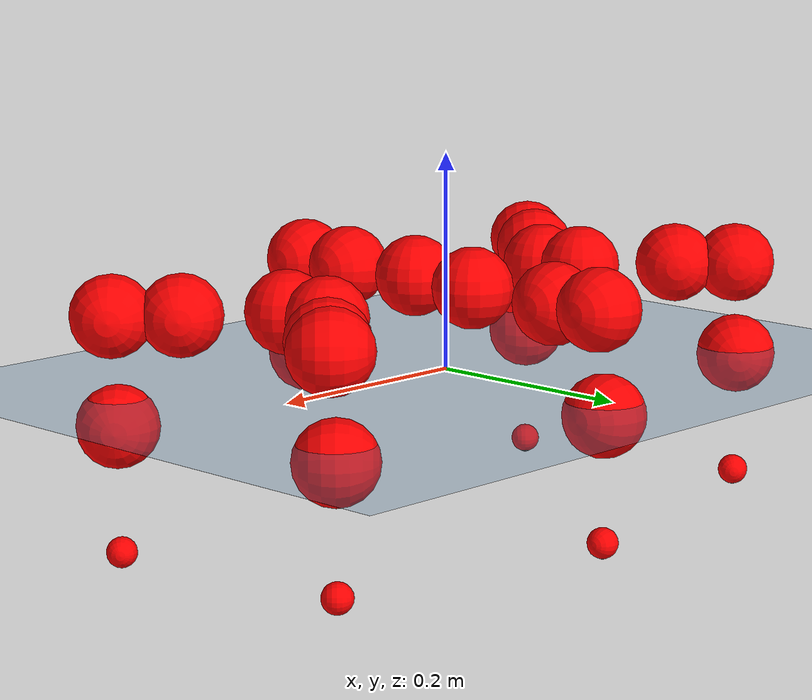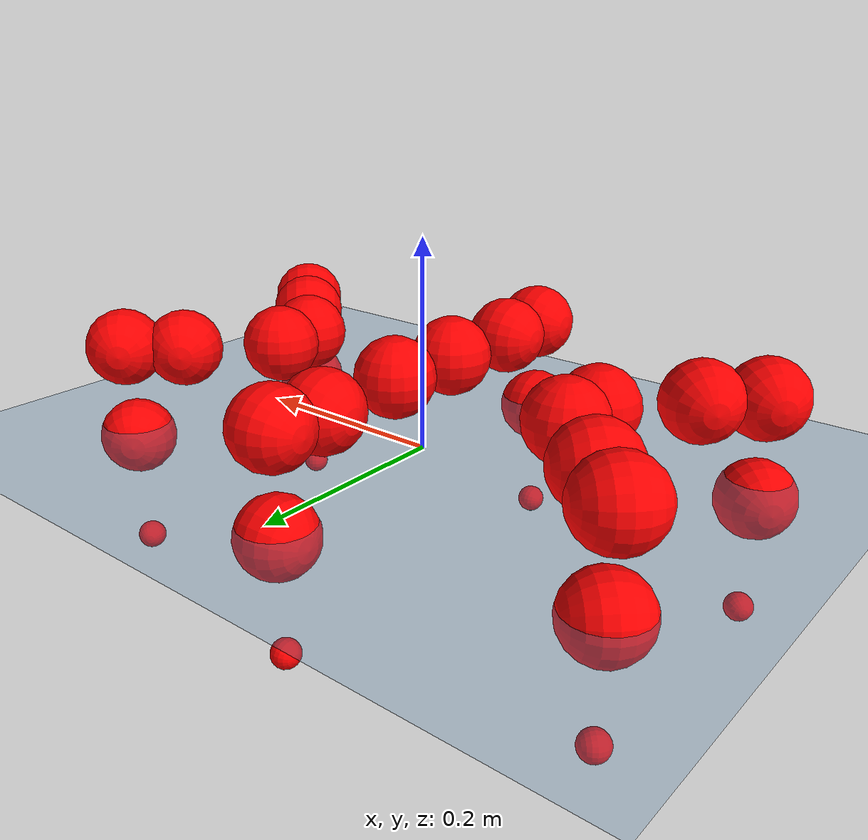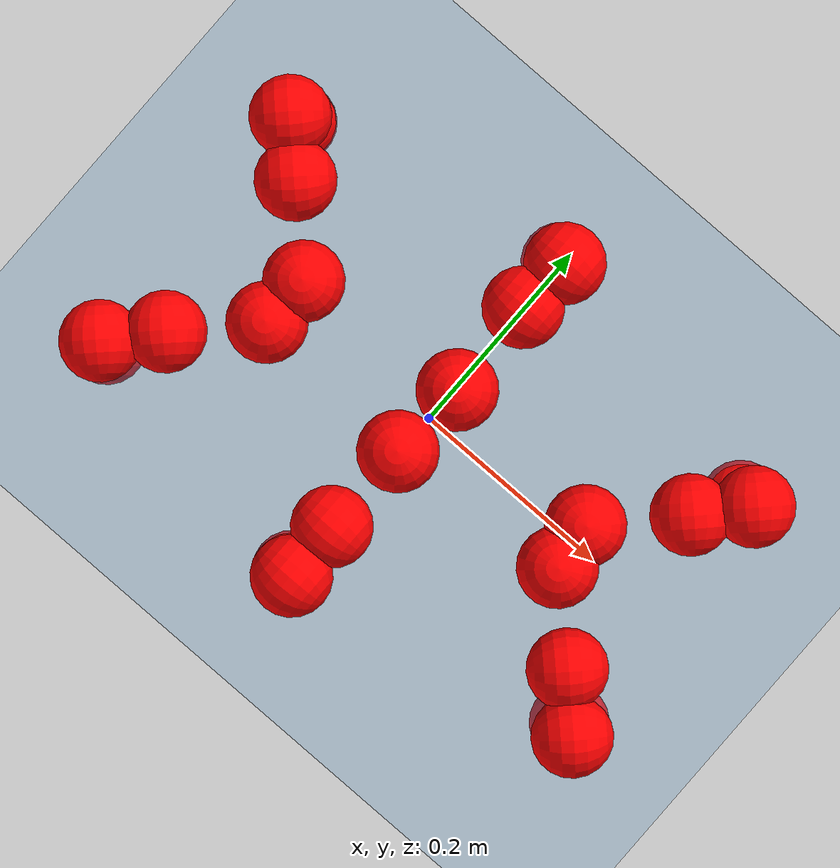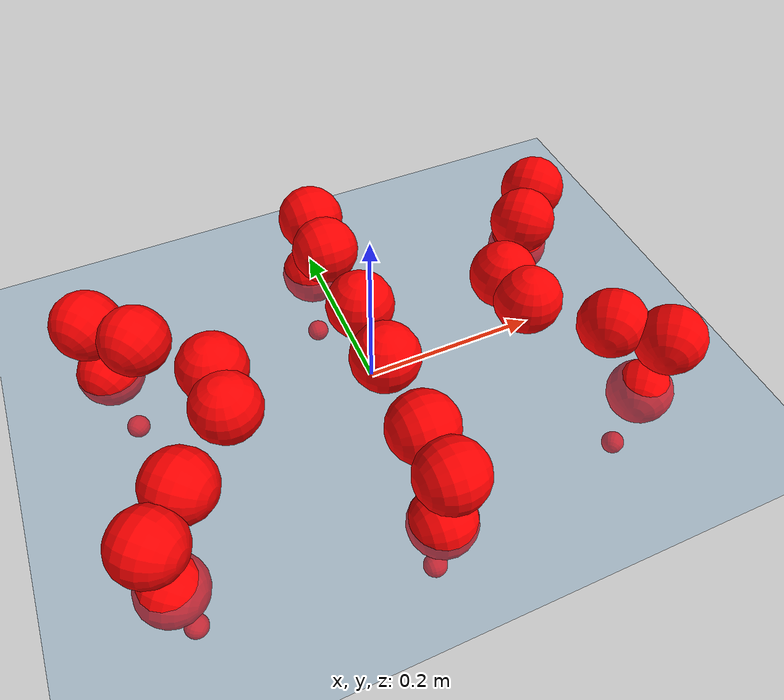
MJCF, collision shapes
<mujoco model="Golem">
  <compiler angle="radian" assetdir="assets" balanceinertia="true" inertiafromgeom="false"/>

  <option timestep="0.005" density="1.2" viscosity="2e-05"/>

  <size nkey="1"/>

  <visual>
    <quality shadowsize="8192"/>
    <map shadowclip="0.5"/>
  </visual>

  <default>
    <default class="/">
      <joint armature="0.01" damping="0.01" frictionloss="0.01"/>
      <geom contype="0" conaffinity="0" group="1" solref="-1000 -80"/>
      <site size="0.01 0.005 0.005" group="5"/>
      <general forcelimited="true" biastype="affine" gainprm="25" biasprm="0 -25 -0.5"/>
      <default class="visual">
        <geom type="mesh" group="2"/>
      </default>
      <default class="collision">
        <geom group="3"/>
      </default>
      <default class="foot">
        <geom size="0.01 0 0" condim="6" group="4" priority="1" solimp="0.015 1 0.01"/>
      </default>
      <default class="reward_collision_sphere">
        <geom group="5" rgba="1 0 0 1"/>
      </default>
    </default>
  </default>

  <asset>
    <texture type="skybox" colorspace="auto" name="//unnamed_texture_0" builtin="gradient" rgb1="0.95 0.95 0.95" rgb2="0.95 0.95 0.95" width="100" height="600"/>
    <texture type="2d" colorspace="auto" name="texplane" builtin="checker" rgb1="0.345 0.575 0.748" rgb2="0.345 0.575 0.748" markrgb="1 1 1" width="512" height="512"/>
    <material name="MatPlane" class="/" texture="texplane" texuniform="true" texrepeat="2 2" specular="0.9"/>
    <mesh name="body" class="/" file="body.stl" scale="0.001 0.001 0.001"/>
    <mesh name="coxa" class="/" file="coxa.stl" scale="0.001 0.001 0.001"/>
    <mesh name="femur" class="/" file="femur.stl" scale="0.001 0.001 0.001"/>
    <mesh name="tibia" class="/" file="tibia.stl" scale="0.001 0.001 0.001"/>
    <mesh name="tarsus" class="/" file="tarsus.stl" scale="0.001 0.001 0.001"/>
  </asset>

  <worldbody>
    <geom name="floor" class="/" size="100 100 0.125" type="plane" group="0" material="MatPlane"/>
    <light name="toplight_shadow" class="/" pos="0 0 5" dir="0.0990148 0.0990148 -0.990148" type="directional" ambient="0.04 0.04 0.04" diffuse="0.55 0.55 0.55" specular="0.12 0.12 0.12"/>
    <light name="toplight_fill" class="/" pos="0 0 5" dir="0.0990148 0.0990148 -0.990148" type="directional" castshadow="false" ambient="0.04 0.04 0.04" diffuse="0.3 0.3 0.3" specular="0.08 0.08 0.08"/>
    <body name="trunk" pos="0.00165543 -0.00349041 -1.63869e-05" quat="1 -7.57849e-05 -0.000117834 -8.89678e-06">
      <inertial pos="-0.000856942 -0.00110586 0.00436704" quat="0.999959 0.00349722 -0.00691672 -0.00457664" mass="2.89219" diaginertia="0.0138704 0.00042935 0.0264348"/>
      <joint name="//unnamed_joint_0" type="free"/>
      <geom name="//unnamed_geom_1" class="/" pos="0 0 0.0773141" quat="1 0 0 0" type="mesh" rgba="0.9 0.9 0.9 1" mesh="body"/>
      <site name="imu" class="/" pos="0.128663 0.00255431 0.110115" size="0.00939171"/>
      <camera name="track" class="/" pos="0 -1.07055 0" quat="0.707107 0.707107 0 0" mode="trackcom"/>
      <camera name="ego_camera" class="/" pos="0.139647 0 0.120803" quat="-0.5 -0.5 0.5 0.5"/>
      <body name="coxa_RR" pos="-0.190934 -0.0494046 0.0742937" quat="0.382508 -0.00113976 0.000938604 -0.923951">
        <inertial pos="0.000452851 0.00476458 -0.00417873" quat="0.999995 0.000690858 0.000545416 0.00296255" mass="0.161069" diaginertia="0.0143213 0.000429383 0.0256303"/>
        <joint name="coxa_joint_RR" class="/" pos="0 0 0" axis="-0.00649853 0.00186283 -0.999977" range="-3.17078 3.131" armature="0.00913138" damping="0.0241924" frictionloss="0.00825715"/>
        <geom name="//unnamed_geom_2" class="/" type="mesh" rgba="0.2 0.2 0.2 1" mesh="coxa"/>
        <geom name="//unnamed_geom_3" class="reward_collision_sphere" size="0.0375668" pos="-0.0322262 0 0"/>
        <body name="femur_RR" pos="0.0589805 0.00216514 0.00111775" quat="0.500815 -0.499029 0.500823 0.49933">
          <inertial pos="0.00159373 0.000584589 -0.0021412" quat="0.999999 0.000816648 -0.00114777 0.000877811" mass="0.162714" diaginertia="0.0140205 0.000426978 0.0250864"/>
          <joint name="femur_joint_RR" class="/" pos="0 0 0" axis="0.00270465 0.00680679 -0.999973" range="-3.12711 3.14255" armature="0.00994036" damping="0.0174514" frictionloss="0.00934245"/>
          <geom name="//unnamed_geom_4" class="/" type="mesh" rgba="0.9 0.9 0.9 1" mesh="femur"/>
          <geom name="//unnamed_geom_5" class="reward_collision_sphere" size="0.0375668"/>
          <body name="tibia_RR" pos="0.00144053 -0.059673 0.00420589" quat="-6.33251e-06 1 -4.59013e-05 1.78678e-05">
            <inertial pos="0.000543797 0.000684001 0.00222887" quat="0.999998 0.000453481 0.000504716 -0.00170921" mass="0.170434" diaginertia="0.0143519 0.000432279 0.0242375"/>
            <joint name="tibia_joint_RR" class="/" pos="0 0 0" axis="-0.000805214 0.00531719 0.999986" range="-3.15833 3.25579" armature="0.00808727" damping="0.00549223" frictionloss="0.0105439"/>
            <geom name="//unnamed_geom_6" class="/" type="mesh" rgba="0.2 0.2 0.2 1" mesh="tibia"/>
            <geom name="//unnamed_geom_7" class="reward_collision_sphere" size="0.0375668"/>
            <body name="tarsus_RR" pos="0.0972401 0.00329398 -0.000806837" quat="1 0.000886191 0.000198825 0.000341117">
              <inertial pos="0.0633504 -0.00565648 0.00245013" quat="0.498186 0.503751 0.499871 0.498171" mass="0.152884" diaginertia="0.0136251 0.000406253 0.0243593"/>
              <joint name="tarsus_joint_RR" class="/" pos="0 0 0" axis="-0.00203362 0.00479982 0.999986" range="-3.2295 3.12567" armature="0.0102371" damping="0.0469983" frictionloss="0.00968778"/>
              <geom name="//unnamed_geom_8" class="/" type="mesh" rgba="0.9 0.9 0.9 1" mesh="tarsus"/>
              <geom name="foot_1" class="foot" size="0.00974037" pos="0.120311 0 0" quat="0 -0.707107 0 0.707107"/>
              <geom name="//unnamed_geom_10" class="reward_collision_sphere" size="0.0375668"/>
              <geom name="//unnamed_geom_11" class="reward_collision_sphere" size="0.0140876" pos="0.115477 0 0"/>
              <site name="foot_1" class="foot" pos="0.120311 0 0" quat="0 -0.707107 0 0.707107" size="0.00939171"/>
            </body>
          </body>
        </body>
      </body>
      <body name="coxa_RM" pos="-0.00313617 -0.0693836 0.0819148" quat="0.707234 -0.00041819 -0.000405133 -0.70698">
        <inertial pos="-0.00153595 0.00108501 0.00250632" quat="0.999993 -0.00126833 0.00286092 -0.00197816" mass="0.171829" diaginertia="0.0147071 0.00044705 0.0265865"/>
        <joint name="coxa_joint_RM" class="/" pos="0 0 0" axis="-0.00164779 -0.00483153 -0.999987" stiffness="0.0210577" range="-3.18705 3.09172" armature="0.00952493" damping="0.0362587" frictionloss="0.0119329"/>
        <geom name="//unnamed_geom_12" class="/" type="mesh" rgba="0.2 0.2 0.2 1" mesh="coxa"/>
        <geom name="//unnamed_geom_13" class="reward_collision_sphere" size="0.0375668" pos="-0.0322262 0 0"/>
        <body name="femur_RM" pos="0.057621 -0.000660735 -0.00176553" quat="0.499834 -0.500829 0.499139 0.500196">
          <inertial pos="0.000761596 -0.000606353 -0.00167895" quat="0.999925 0.00126271 -0.0121845 4.22905e-06" mass="0.157727" diaginertia="0.0145522 0.000417086 0.0252911"/>
          <joint name="femur_joint_RM" class="/" pos="0 0 0" axis="-0.00904507 -0.00964703 -0.999913" stiffness="0.000819022" range="-3.0914 3.12654" armature="0.00829147" damping="0.0157556" frictionloss="0.00895853"/>
          <geom name="//unnamed_geom_14" class="/" type="mesh" rgba="0.9 0.9 0.9 1" mesh="femur"/>
          <geom name="//unnamed_geom_15" class="reward_collision_sphere" size="0.0375668"/>
          <body name="tibia_RM" pos="-0.000734838 -0.056903 0.0014441" quat="0.000116512 1 0.000318858 4.11407e-06">
            <inertial pos="0.00473861 0.00345958 0.00209813" quat="0.999701 -0.0157063 0.0166221 0.00861592" mass="0.167025" diaginertia="0.0142969 0.000444794 0.0274772"/>
            <joint name="tibia_joint_RM" class="/" pos="0 0 0" axis="-0.00274318 -0.00478878 0.999985" range="-3.11456 3.15781" armature="0.00972249" damping="0" frictionloss="0.0094467"/>
            <geom name="//unnamed_geom_16" class="/" type="mesh" rgba="0.2 0.2 0.2 1" mesh="tibia"/>
            <geom name="//unnamed_geom_17" class="reward_collision_sphere" size="0.0375668"/>
            <body name="tarsus_RM" pos="0.093473 0.00153037 0.00271416" quat="0.999999 3.75071e-06 0.00113888 0.000246151">
              <inertial pos="0.0632604 0.00334448 -0.0020414" quat="0.494179 0.499904 0.497739 0.508074" mass="0.164924" diaginertia="0.0144712 0.00042251 0.0257425"/>
              <joint name="tarsus_joint_RM" class="/" pos="0 0 0" axis="0.0103251 0.00108234 0.999946" range="-3.13726 3.1242" armature="0.0112333" damping="0" frictionloss="0.010422"/>
              <geom name="//unnamed_geom_18" class="/" type="mesh" rgba="0.9 0.9 0.9 1" mesh="tarsus"/>
              <geom name="foot_2" class="foot" size="0.0100702" pos="0.120311 0 0" quat="0 -0.707107 0 0.707107"/>
              <geom name="//unnamed_geom_20" class="reward_collision_sphere" size="0.0375668"/>
              <geom name="//unnamed_geom_21" class="reward_collision_sphere" size="0.0140876" pos="0.115477 0 0"/>
              <site name="foot_2" class="foot" pos="0.120311 0 0" quat="0 -0.707107 0 0.707107" size="0.00939171"/>
            </body>
          </body>
        </body>
      </body>
      <body name="coxa_RF" pos="0.196135 -0.0446037 0.074605" quat="0.923852 -9.08275e-05 5.50839e-05 -0.38275">
        <inertial pos="-0.00264857 -0.000449356 0.000638922" quat="0.999932 -0.00766889 0.00883663 5.40359e-05" mass="0.164267" diaginertia="0.0133862 0.000448469 0.0264832"/>
        <joint name="coxa_joint_RF" class="/" pos="0 0 0" axis="0.00576346 0.00174513 -0.999982" range="-3.13492 3.09268" armature="0.00894883" damping="0.0306941" frictionloss="0.00848155"/>
        <geom name="//unnamed_geom_22" class="/" type="mesh" rgba="0.2 0.2 0.2 1" mesh="coxa"/>
        <geom name="//unnamed_geom_23" class="reward_collision_sphere" size="0.0375668" pos="-0.0322262 0 0"/>
        <body name="femur_RF" pos="0.0598537 0.00238427 -0.0023555" quat="0.500083 -0.499996 0.500901 0.499018">
          <inertial pos="-0.00216915 -0.00297131 0.00190404" quat="0.999935 0.00157284 -0.000606266 0.0112856" mass="0.162881" diaginertia="0.0136669 0.000397872 0.0257688"/>
          <joint name="femur_joint_RF" class="/" pos="0 0 0" axis="-8.35067e-06 -0.000555988 -1" stiffness="0.00106516" range="-3.19704 3.14979" armature="0.00891639" damping="0.0143775" frictionloss="0.0102414"/>
          <geom name="//unnamed_geom_24" class="/" type="mesh" rgba="0.9 0.9 0.9 1" mesh="femur"/>
          <geom name="//unnamed_geom_25" class="reward_collision_sphere" size="0.0375668"/>
          <body name="tibia_RF" pos="0.000529023 -0.0610219 0.000195227" quat="-5.65939e-05 1 6.8792e-06 -0.00012357">
            <inertial pos="0.00171877 -0.00039495 0.000809591" quat="0.999936 -0.00264841 0.0102735 -0.00392266" mass="0.162555" diaginertia="0.0131989 0.000434999 0.0248902"/>
            <joint name="tibia_joint_RF" class="/" pos="0 0 0" axis="-0.00453802 -0.00551132 0.999975" range="-3.09693 3.08726" armature="0.00996522" damping="0.00104454" frictionloss="0.01038"/>
            <geom name="//unnamed_geom_26" class="/" type="mesh" rgba="0.2 0.2 0.2 1" mesh="tibia"/>
            <geom name="//unnamed_geom_27" class="reward_collision_sphere" size="0.0375668"/>
            <body name="tarsus_RF" pos="0.0984425 -0.00363121 -0.00209685" quat="0.999998 0.000257435 -0.0011679 -0.00172439">
              <inertial pos="0.0687808 0.0045159 -0.00238488" quat="0.495161 0.516415 0.507495 0.480187" mass="0.166767" diaginertia="0.013383 0.00045962 0.025071"/>
              <joint name="tarsus_joint_RF" class="/" pos="0 0 0" axis="0.00203493 -0.00959936 0.999952" stiffness="0.0237108" range="-3.2241 3.09604" armature="0.00671862" damping="0.0106025" frictionloss="0.00936268"/>
              <geom name="//unnamed_geom_28" class="/" type="mesh" rgba="0.9 0.9 0.9 1" mesh="tarsus"/>
              <geom name="foot_3" class="foot" size="0.00855973" pos="0.120311 0 0" quat="0 -0.707107 0 0.707107"/>
              <geom name="//unnamed_geom_30" class="reward_collision_sphere" size="0.0375668"/>
              <geom name="//unnamed_geom_31" class="reward_collision_sphere" size="0.0140876" pos="0.115477 0 0"/>
              <site name="foot_3" class="foot" pos="0.120311 0 0" quat="0 -0.707107 0 0.707107" size="0.00939171"/>
            </body>
          </body>
        </body>
      </body>
      <body name="coxa_LR" pos="-0.189913 0.0454366 0.0778186" quat="0.382446 -7.64358e-07 -0.000569972 0.923977">
        <inertial pos="-0.00215139 0.00482234 0.00331625" quat="0.999949 0.00351142 0.00936499 0.00122454" mass="0.173847" diaginertia="0.0156041 0.000441402 0.0274221"/>
        <joint name="coxa_joint_LR" class="/" pos="0 0 0" axis="-0.00462063 -0.00167751 -0.999988" stiffness="0.00451243" range="-3.1602 3.05151" armature="0.0111314" damping="0.0101288" frictionloss="0.00824371"/>
        <geom name="//unnamed_geom_32" class="/" type="mesh" rgba="0.2 0.2 0.2 1" mesh="coxa"/>
        <geom name="//unnamed_geom_33" class="reward_collision_sphere" size="0.0375668" pos="-0.0322262 0 0"/>
        <body name="femur_LR" pos="0.0586944 0.000679218 0.00252458" quat="0.500229 -0.500102 0.500114 0.499554">
          <inertial pos="0.00220486 -0.00099193 0.00265964" quat="0.999771 -0.0150434 -0.0145626 -0.00435866" mass="0.160491" diaginertia="0.014116 0.000424903 0.0231797"/>
          <joint name="femur_joint_LR" class="/" pos="0 0 0" axis="0.000598742 0.004199 0.999991" stiffness="0.0114365" range="-3.2461 3.17937" armature="0.00943573" damping="0.019101" frictionloss="0.0083508"/>
          <geom name="//unnamed_geom_34" class="/" type="mesh" rgba="0.9 0.9 0.9 1" mesh="femur"/>
          <geom name="//unnamed_geom_35" class="reward_collision_sphere" size="0.0375668"/>
          <body name="tibia_LR" pos="0.000319464 -0.0578229 0.000712148" quat="0.000210188 1 0.000202701 4.50121e-05">
            <inertial pos="-0.00205745 0.00458961 -0.00099951" quat="1 -9.22275e-05 2.94189e-05 -0.00010589" mass="0.165896" diaginertia="0.0142676 0.000448318 0.0256301"/>
            <joint name="tibia_joint_LR" class="/" pos="0 0 0" axis="-0.00441947 -0.00076526 -0.99999" range="-3.09809 3.14321" armature="0.00934069" damping="0.0444674" frictionloss="0.00928228"/>
            <geom name="//unnamed_geom_36" class="/" type="mesh" rgba="0.2 0.2 0.2 1" mesh="tibia"/>
            <geom name="//unnamed_geom_37" class="reward_collision_sphere" size="0.0375668"/>
            <body name="tarsus_LR" pos="0.0882606 0.00229945 0.00229571" quat="0.999999 0.00114405 -3.14946e-05 -0.00083369">
              <inertial pos="0.0602535 -0.00108137 7.79457e-06" quat="0.501231 0.500173 0.500592 0.497999" mass="0.161537" diaginertia="0.0148514 0.000438579 0.0266961"/>
              <joint name="tarsus_joint_LR" class="/" pos="0 0 0" axis="-0.00935595 -0.00945155 -0.999912" stiffness="0.0165323" range="-3.07866 3.13545" armature="0.00933407" damping="0.0287418" frictionloss="0.0109919"/>
              <geom name="//unnamed_geom_38" class="/" type="mesh" rgba="0.9 0.9 0.9 1" mesh="tarsus"/>
              <geom name="foot_4" class="foot" size="0.00945375" pos="0.120311 0 0" quat="0.707107 0 -0.707107 0"/>
              <geom name="//unnamed_geom_40" class="reward_collision_sphere" size="0.0375668"/>
              <geom name="//unnamed_geom_41" class="reward_collision_sphere" size="0.0140876" pos="0.115477 0 0"/>
              <site name="foot_4" class="foot" pos="0.120311 0 0" quat="0.707107 0 -0.707107 0" size="0.00939171"/>
            </body>
          </body>
        </body>
      </body>
      <body name="coxa_LM" pos="0.000958453 0.0714991 0.080527" quat="0.707058 -3.14807e-05 0.000164458 0.707156">
        <inertial pos="0.00293588 -0.0023078 0.00169234" quat="0.999991 0.00131886 0.00203181 0.00343877" mass="0.174495" diaginertia="0.0151438 0.000475779 0.0251589"/>
        <joint name="coxa_joint_LM" class="/" pos="0 0 0" axis="0.00536385 -0.00820727 -0.999952" range="-3.13847 3.14916" armature="0.00751462" damping="0.0301422" frictionloss="0.00961011"/>
        <geom name="//unnamed_geom_42" class="/" type="mesh" rgba="0.2 0.2 0.2 1" mesh="coxa"/>
        <geom name="//unnamed_geom_43" class="reward_collision_sphere" size="0.0375668" pos="-0.0322262 0 0"/>
        <body name="femur_LM" pos="0.0626016 0.00387891 -0.00221791" quat="0.499441 -0.500456 0.499427 0.500675">
          <inertial pos="-0.00179788 0.000619858 -0.00351369" quat="1 -3.53483e-05 -2.56963e-05 -1.19585e-05" mass="0.165602" diaginertia="0.0145231 0.000444521 0.0252427"/>
          <joint name="femur_joint_LM" class="/" pos="0 0 0" axis="0.00953765 0.00136117 0.999954" range="-3.09224 3.1742" armature="0.0100072" damping="0.0143283" frictionloss="0.00904968"/>
          <geom name="//unnamed_geom_44" class="/" type="mesh" rgba="0.9 0.9 0.9 1" mesh="femur"/>
          <geom name="//unnamed_geom_45" class="reward_collision_sphere" size="0.0375668"/>
          <body name="tibia_LM" pos="-0.00209621 -0.0540363 -0.00267661" quat="0.000310117 1 -0.000773867 -0.000180182">
            <inertial pos="8.95603e-05 0.00416756 -0.00532081" quat="0.999625 -0.0223505 -0.014659 -0.00587583" mass="0.172515" diaginertia="0.0140067 0.000452811 0.0263315"/>
            <joint name="tibia_joint_LM" class="/" pos="0 0 0" axis="0.00633542 0.00529073 -0.999966" stiffness="0.0234545" range="-3.14584 3.20783" armature="0.01031" damping="0.0165848" frictionloss="0.00978177"/>
            <geom name="//unnamed_geom_46" class="/" type="mesh" rgba="0.2 0.2 0.2 1" mesh="tibia"/>
            <geom name="//unnamed_geom_47" class="reward_collision_sphere" size="0.0375668"/>
            <body name="tarsus_LM" pos="0.0944654 0.00455581 -0.0033766" quat="1 0.000549057 0.000651973 0.000363003">
              <inertial pos="0.0631085 -0.0010288 0.00259634" quat="0.492376 0.505572 0.48621 0.515328" mass="0.158009" diaginertia="0.0136306 0.000444035 0.025608"/>
              <joint name="tarsus_joint_LM" class="/" pos="0 0 0" axis="-0.0138677 0.00480548 -0.999892" stiffness="0.025588" range="-3.16267 3.20307" armature="0.00871168" damping="0.0207834" frictionloss="0.00920956"/>
              <geom name="//unnamed_geom_48" class="/" type="mesh" rgba="0.9 0.9 0.9 1" mesh="tarsus"/>
              <geom name="foot_5" class="foot" size="0.00961395" pos="0.120311 0 0" quat="0.707107 0 -0.707107 0"/>
              <geom name="//unnamed_geom_50" class="reward_collision_sphere" size="0.0375668"/>
              <geom name="//unnamed_geom_51" class="reward_collision_sphere" size="0.0140876" pos="0.115477 0 0"/>
              <site name="foot_5" class="foot" pos="0.120311 0 0" quat="0.707107 0 -0.707107 0" size="0.00939171"/>
            </body>
          </body>
        </body>
      </body>
      <body name="coxa_LF" pos="0.190658 0.0456261 0.0738182" quat="0.92336 0.00127186 0.000289882 0.383933">
        <inertial pos="0.00260781 -0.00244454 0.00132668" quat="0.999631 -0.00453395 -0.0243748 0.0110844" mass="0.161245" diaginertia="0.014549 0.00043057 0.0281805"/>
        <joint name="coxa_joint_LF" class="/" pos="0 0 0" axis="0.000790192 0.014853 -0.999889" stiffness="0.0308124" range="-3.1373 3.1475" armature="0.0101508" damping="0.0134977" frictionloss="0.0105688"/>
        <geom name="//unnamed_geom_52" class="/" type="mesh" rgba="0.2 0.2 0.2 1" mesh="coxa"/>
        <geom name="//unnamed_geom_53" class="reward_collision_sphere" size="0.0375668" pos="-0.0322262 0 0"/>
        <body name="femur_LF" pos="0.0630011 0.00273734 -0.000567028" quat="0.499995 -0.500245 0.500048 0.499712">
          <inertial pos="-0.00307271 -0.00246679 -0.00435106" quat="0.999953 -0.00226068 -0.00570066 -0.00753537" mass="0.16672" diaginertia="0.014725 0.000440835 0.0274348"/>
          <joint name="femur_joint_LF" class="/" pos="0 0 0" axis="-0.00141054 -0.000148531 0.999999" range="-3.12321 3.02673" armature="0.00889163" damping="0.0262446" frictionloss="0.00992474"/>
          <geom name="//unnamed_geom_54" class="/" type="mesh" rgba="0.9 0.9 0.9 1" mesh="femur"/>
          <geom name="//unnamed_geom_55" class="reward_collision_sphere" size="0.0375668"/>
          <body name="tibia_LF" pos="-0.00350695 -0.0571043 0.00328142" quat="-0.00029584 1 -7.86094e-05 -0.000130914">
            <inertial pos="-0.00175134 0.00291385 -9.61887e-05" quat="1 0.000257112 -0.000143578 0.0001347" mass="0.1663" diaginertia="0.0142001 0.000445632 0.0256686"/>
            <joint name="tibia_joint_LF" class="/" pos="0 0 0" axis="0.0107973 0.00146355 -0.999941" range="-3.17281 3.12093" armature="0.0112454" damping="0" frictionloss="0.0104136"/>
            <geom name="//unnamed_geom_56" class="/" type="mesh" rgba="0.2 0.2 0.2 1" mesh="tibia"/>
            <geom name="//unnamed_geom_57" class="reward_collision_sphere" size="0.0375668"/>
            <body name="tarsus_LF" pos="0.0932706 -0.0031264 -0.00356616" quat="1 -0.000279031 -0.000197621 -0.000864085">
              <inertial pos="0.0666346 0.00248617 -0.000995741" quat="0.49982 0.501161 0.502257 0.496745" mass="0.164863" diaginertia="0.0137221 0.000424531 0.025006"/>
              <joint name="tarsus_joint_LF" class="/" pos="0 0 0" axis="-0.00705405 0.000670147 -0.999975" stiffness="0.0283874" range="-3.06355 3.05446" armature="0.00951147" damping="0.0145805" frictionloss="0.00874702"/>
              <geom name="//unnamed_geom_58" class="/" type="mesh" rgba="0.9 0.9 0.9 1" mesh="tarsus"/>
              <geom name="foot_6" class="foot" size="0.00836876" pos="0.120311 0 0" quat="0.707107 0 -0.707107 0"/>
              <geom name="//unnamed_geom_60" class="reward_collision_sphere" size="0.0375668"/>
              <geom name="//unnamed_geom_61" class="reward_collision_sphere" size="0.0140876" pos="0.115477 0 0"/>
              <site name="foot_6" class="foot" pos="0.120311 0 0" quat="0.707107 0 -0.707107 0" size="0.00939171"/>
            </body>
          </body>
        </body>
      </body>
    </body>
  </worldbody>

  <contact>
    <pair class="/" geom1="floor" geom2="foot_1" name="//unnamed_contact_0"/>
    <pair class="/" geom1="floor" geom2="foot_2" name="//unnamed_contact_1"/>
    <pair class="/" geom1="floor" geom2="foot_3" name="//unnamed_contact_2"/>
    <pair class="/" geom1="floor" geom2="foot_4" name="//unnamed_contact_3"/>
    <pair class="/" geom1="floor" geom2="foot_5" name="//unnamed_contact_4"/>
    <pair class="/" geom1="floor" geom2="foot_6" name="//unnamed_contact_5"/>
  </contact>

  <actuator>
    <general name="coxa_joint_RR" class="/" joint="coxa_joint_RR" forcerange="-7.22745 7.22745" gainprm="21.6488" biasprm="0 -21.6488 -0.447533"/>
    <general name="femur_joint_RR" class="/" joint="femur_joint_RR" forcerange="-6.6662 6.6662" gainprm="21.6488" biasprm="0 -21.6488 -0.447533"/>
    <general name="tibia_joint_RR" class="/" joint="tibia_joint_RR" forcerange="-8.04687 8.04687" gainprm="21.6488" biasprm="0 -21.6488 -0.447533"/>
    <general name="tarsus_joint_RR" class="/" joint="tarsus_joint_RR" forcerange="-6.96685 6.96685" gainprm="21.6488" biasprm="0 -21.6488 -0.447533"/>
    <general name="coxa_joint_RM" class="/" joint="coxa_joint_RM" forcerange="-6.91558 6.91558" gainprm="21.6488" biasprm="0 -21.6488 -0.447533"/>
    <general name="femur_joint_RM" class="/" joint="femur_joint_RM" forcerange="-7.14999 7.14999" gainprm="21.6488" biasprm="0 -21.6488 -0.447533"/>
    <general name="tibia_joint_RM" class="/" joint="tibia_joint_RM" forcerange="-8.25946 8.25946" gainprm="21.6488" biasprm="0 -21.6488 -0.447533"/>
    <general name="tarsus_joint_RM" class="/" joint="tarsus_joint_RM" forcerange="-6.28162 6.28162" gainprm="21.6488" biasprm="0 -21.6488 -0.447533"/>
    <general name="coxa_joint_RF" class="/" joint="coxa_joint_RF" forcerange="-6.52303 6.52303" gainprm="21.6488" biasprm="0 -21.6488 -0.447533"/>
    <general name="femur_joint_RF" class="/" joint="femur_joint_RF" forcerange="-5.4501 5.4501" gainprm="21.6488" biasprm="0 -21.6488 -0.447533"/>
    <general name="tibia_joint_RF" class="/" joint="tibia_joint_RF" forcerange="-7.05023 7.05023" gainprm="21.6488" biasprm="0 -21.6488 -0.447533"/>
    <general name="tarsus_joint_RF" class="/" joint="tarsus_joint_RF" forcerange="-5.47276 5.47276" gainprm="21.6488" biasprm="0 -21.6488 -0.447533"/>
    <general name="coxa_joint_LR" class="/" joint="coxa_joint_LR" forcerange="-7.50333 7.50333" gainprm="21.6488" biasprm="0 -21.6488 -0.447533"/>
    <general name="femur_joint_LR" class="/" joint="femur_joint_LR" forcerange="-7.31151 7.31151" gainprm="21.6488" biasprm="0 -21.6488 -0.447533"/>
    <general name="tibia_joint_LR" class="/" joint="tibia_joint_LR" forcerange="-6.87094 6.87094" gainprm="21.6488" biasprm="0 -21.6488 -0.447533"/>
    <general name="tarsus_joint_LR" class="/" joint="tarsus_joint_LR" forcerange="-6.99786 6.99786" gainprm="21.6488" biasprm="0 -21.6488 -0.447533"/>
    <general name="coxa_joint_LM" class="/" joint="coxa_joint_LM" forcerange="-7.10659 7.10659" gainprm="21.6488" biasprm="0 -21.6488 -0.447533"/>
    <general name="femur_joint_LM" class="/" joint="femur_joint_LM" forcerange="-6.92615 6.92615" gainprm="21.6488" biasprm="0 -21.6488 -0.447533"/>
    <general name="tibia_joint_LM" class="/" joint="tibia_joint_LM" forcerange="-7.89435 7.89435" gainprm="21.6488" biasprm="0 -21.6488 -0.447533"/>
    <general name="tarsus_joint_LM" class="/" joint="tarsus_joint_LM" forcerange="-7.12561 7.12561" gainprm="21.6488" biasprm="0 -21.6488 -0.447533"/>
    <general name="coxa_joint_LF" class="/" joint="coxa_joint_LF" forcerange="-7.35415 7.35415" gainprm="21.6488" biasprm="0 -21.6488 -0.447533"/>
    <general name="femur_joint_LF" class="/" joint="femur_joint_LF" forcerange="-7.58457 7.58457" gainprm="21.6488" biasprm="0 -21.6488 -0.447533"/>
    <general name="tibia_joint_LF" class="/" joint="tibia_joint_LF" forcerange="-6.89122 6.89122" gainprm="21.6488" biasprm="0 -21.6488 -0.447533"/>
    <general name="tarsus_joint_LF" class="/" joint="tarsus_joint_LF" forcerange="-6.81978 6.81978" gainprm="21.6488" biasprm="0 -21.6488 -0.447533"/>
  </actuator>

  <sensor>
    <gyro site="imu" name="imu_angular_velocity"/>
    <velocimeter site="imu" name="imu_linear_velocity"/>
    <framelinvel objtype="site" objname="foot_1" name="foot_1_global_linear_velocity"/>
    <framelinvel objtype="site" objname="foot_2" name="foot_2_global_linear_velocity"/>
    <framelinvel objtype="site" objname="foot_3" name="foot_3_global_linear_velocity"/>
    <framelinvel objtype="site" objname="foot_4" name="foot_4_global_linear_velocity"/>
    <framelinvel objtype="site" objname="foot_5" name="foot_5_global_linear_velocity"/>
    <framelinvel objtype="site" objname="foot_6" name="foot_6_global_linear_velocity"/>
  </sensor>

  <keyframe>
    <key name="home" qpos="0 0 0.1457 1 0 0 0 0 0 0 0 0 0 0 0 0 0 0 0 0 0 0 0 0 0 0 0 0 0 0 0"/>
  </keyframe>
</mujoco>
